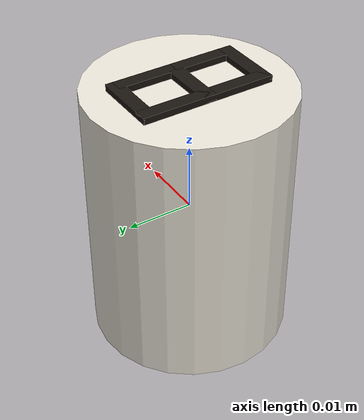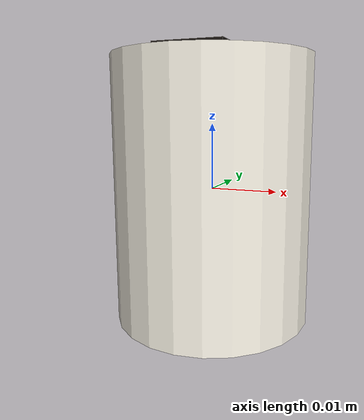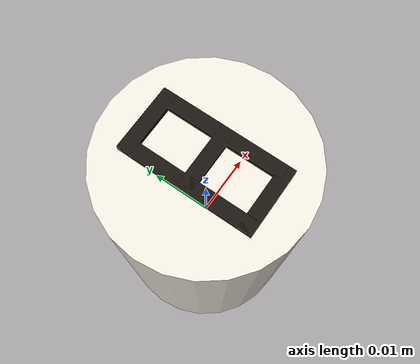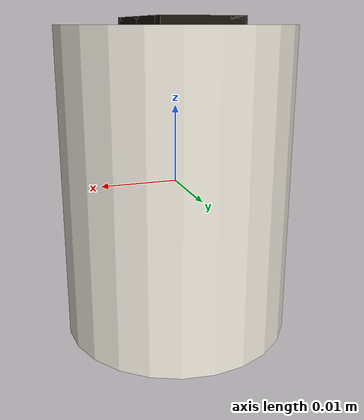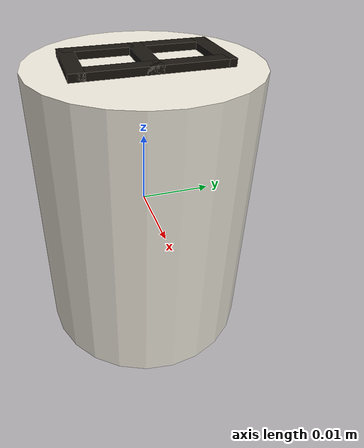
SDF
<?xml version="1.0" ?>
<sdf version="1.9">
  <model name="bishop_white">
    <static>false</static>
    <pose>0 0 0 0 0 0</pose>

    <link name="link">

      <inertial>
        <mass>0.05</mass>
        <inertia>
          <ixx>0.00002</ixx>
          <iyy>0.00002</iyy>
          <izz>0.00001</izz>
        </inertia>
      </inertial>

      <collision name="collision">
        <geometry>
          <cylinder>
            <radius>0.015</radius>
            <length>0.04</length>
          </cylinder>
        </geometry>
        <surface>
          <friction>
            <ode>
              <mu>1.8</mu>
              <mu2>1.8</mu2>
            </ode>
          </friction>
        </surface>
      </collision>

      <visual name="visual">
        <geometry>
          <cylinder>
            <radius>0.015</radius>
            <length>0.04</length>
          </cylinder>
        </geometry>
        <material>
          <ambient>0.92 0.90 0.85 1</ambient>
          <diffuse>0.92 0.90 0.85 1</diffuse>
        </material>
      </visual>

      <!-- "B" imprint: stem + two stacked loops. -->
      <visual name="letter_stem">
        <pose>-0.004 0 0.0205 0 0 0</pose>
        <geometry><box><size>0.002 0.020 0.001</size></box></geometry>
        <material>
          <ambient>0.10 0.08 0.06 1</ambient>
          <diffuse>0.10 0.08 0.06 1</diffuse>
        </material>
      </visual>
      <visual name="letter_top">
        <pose>0 0.009 0.0205 0 0 0</pose>
        <geometry><box><size>0.010 0.002 0.001</size></box></geometry>
        <material>
          <ambient>0.10 0.08 0.06 1</ambient>
          <diffuse>0.10 0.08 0.06 1</diffuse>
        </material>
      </visual>
      <visual name="letter_middle">
        <pose>0 0 0.0205 0 0 0</pose>
        <geometry><box><size>0.010 0.002 0.001</size></box></geometry>
        <material>
          <ambient>0.10 0.08 0.06 1</ambient>
          <diffuse>0.10 0.08 0.06 1</diffuse>
        </material>
      </visual>
      <visual name="letter_bottom">
        <pose>0 -0.009 0.0205 0 0 0</pose>
        <geometry><box><size>0.010 0.002 0.001</size></box></geometry>
        <material>
          <ambient>0.10 0.08 0.06 1</ambient>
          <diffuse>0.10 0.08 0.06 1</diffuse>
        </material>
      </visual>
      <visual name="letter_loop_top_right">
        <pose>0.004 0.0045 0.0205 0 0 0</pose>
        <geometry><box><size>0.002 0.009 0.001</size></box></geometry>
        <material>
          <ambient>0.10 0.08 0.06 1</ambient>
          <diffuse>0.10 0.08 0.06 1</diffuse>
        </material>
      </visual>
      <visual name="letter_loop_bottom_right">
        <pose>0.004 -0.0045 0.0205 0 0 0</pose>
        <geometry><box><size>0.002 0.009 0.001</size></box></geometry>
        <material>
          <ambient>0.10 0.08 0.06 1</ambient>
          <diffuse>0.10 0.08 0.06 1</diffuse>
        </material>
      </visual>

    </link>
  </model>
</sdf>
